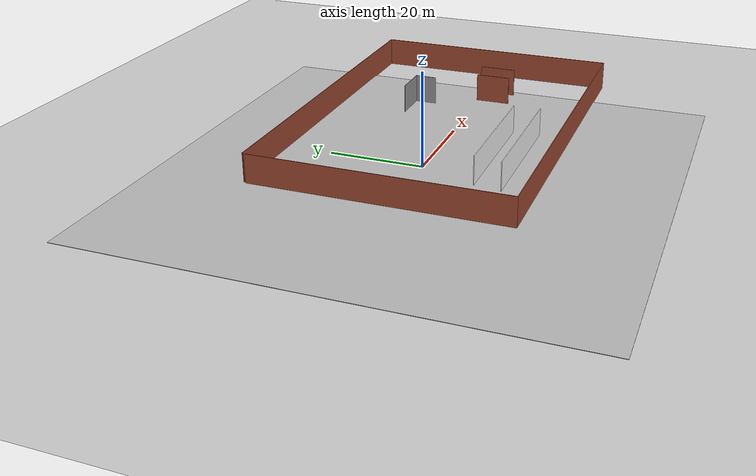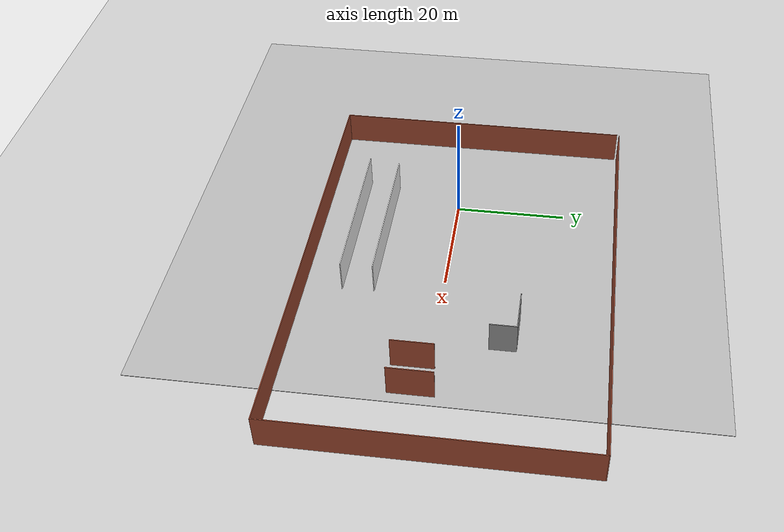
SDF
<sdf version="1.7">
 <world name="default">
  <light name="sun" type="directional">
   <pose>0 0 10 0 -0 0</pose>
   <diffuse>0.8 0.8 0.8 1</diffuse>
   <specular>0.2 0.2 0.2 1</specular>
   <attenuation>
    <range>1000</range>
    <constant>0.9</constant>
    <linear>0.01</linear>
    <quadratic>0.001</quadratic>
   </attenuation>
   <direction>-0.5 0.1 -0.9</direction>
   <spot><inner_angle>0</inner_angle><outer_angle>0</outer_angle><falloff>0</falloff></spot>
  </light>
  <model name="ground_plane">
   <static>1</static>
   <link name="link">
    <collision name="collision">
     <geometry><plane><normal>0 0 1</normal><size>100 100</size></plane></geometry>
     <surface>
      <contact><collide_bitmask>65535</collide_bitmask></contact>
      <friction><ode><mu>100</mu><mu2>50</mu2></ode></friction>
     </surface>
    </collision>
    <visual name="visual">
     <cast_shadows>0</cast_shadows>
     <geometry><plane><normal>0 0 1</normal><size>100 100</size></plane></geometry>
     <material>
      <script><uri>file://media/materials/scripts/gazebo.material</uri><name>Gazebo/Grey</name></script>
     </material>
    </visual>
   </link>
  </model>
  <gravity>0 0 -9.8</gravity>
  <magnetic_field>6e-06 2.3e-05 -4.2e-05</magnetic_field>
  <atmosphere type="adiabatic"/>
  <physics type="ode">
   <max_step_size>0.001</max_step_size>
   <real_time_factor>1</real_time_factor>
   <real_time_update_rate>1000</real_time_update_rate>
  </physics>
  <scene><ambient>0.4 0.4 0.4 1</ambient><background>0.7 0.7 0.7 1</background><shadows>1</shadows></scene>
  <spherical_coordinates>
   <surface_model>EARTH_WGS84</surface_model>
   <latitude_deg>0</latitude_deg>
   <longitude_deg>0</longitude_deg>
   <elevation>0</elevation>
   <heading_deg>0</heading_deg>
  </spherical_coordinates>
  <model name="ground_plane_0">
   <static>1</static>
   <link name="link">
    <collision name="collision">
     <geometry><plane><normal>0 0 1</normal><size>100 100</size></plane></geometry>
     <surface><friction><ode><mu>100</mu><mu2>50</mu2></ode></friction></surface>
    </collision>
    <visual name="visual">
     <cast_shadows>0</cast_shadows>
     <geometry><plane><normal>0 0 1</normal><size>100 100</size></plane></geometry>
     <material>
      <script>
       <uri>model://my_ground_plane/materials/scripts</uri>
       <uri>model://my_ground_plane/materials/textures/</uri>
       <name>MyGroundPlane/Image</name>
      </script>
     </material>
    </visual>
   </link>
   <pose>-2.09958 -0.261794 0 0 -0 0</pose>
  </model>
  <model name="jypro_simulation_wall">
   <pose>19.7486 2.51602 0 0 -0 0</pose>
   <link name="Wall_0">
    <collision name="Wall_0_Collision">
     <geometry><box><size>54.25 0.15 10</size></box></geometry>
     <pose>0 0 1.25 0 -0 0</pose>
    </collision>
    <visual name="Wall_0_Visual">
     <pose>0 0 1.25 0 -0 0</pose>
     <geometry><box><size>54.25 0.15 10</size></box></geometry>
     <material>
      <script><uri>file://media/materials/scripts/gazebo.material</uri><name>Gazebo/Bricks</name></script>
      <ambient>1 1 1 1</ambient>
     </material>
     <meta><layer>0</layer></meta>
    </visual>
    <pose>-38.8 -0.25 0 0 -0 -1.5708</pose>
   </link>
   <link name="Wall_1">
    <collision name="Wall_1_Collision">
     <geometry><box><size>77.75 0.15 10</size></box></geometry>
     <pose>0 0 1.25 0 -0 0</pose>
    </collision>
    <visual name="Wall_1_Visual">
     <pose>0 0 1.25 0 -0 0</pose>
     <geometry><box><size>77.75 0.15 10</size></box></geometry>
     <material>
      <script><uri>file://media/materials/scripts/gazebo.material</uri><name>Gazebo/Bricks</name></script>
      <ambient>1 1 1 1</ambient>
     </material>
     <meta><layer>0</layer></meta>
    </visual>
    <pose>1e-06 -27.3 0 0 -0 0</pose>
   </link>
   <link name="Wall_11">
    <collision name="Wall_11_Collision">
     <geometry><box><size>8 0.15 10</size></box></geometry>
     <pose>0 0 1.25 0 -0 0</pose>
    </collision>
    <visual name="Wall_11_Visual">
     <pose>0 0 1.25 0 -0 0</pose>
     <geometry><box><size>8 0.15 10</size></box></geometry>
     <material>
      <script><uri>file://media/materials/scripts/gazebo.material</uri><name>Gazebo/Bricks</name></script>
      <ambient>1 1 1 1</ambient>
     </material>
     <meta><layer>0</layer></meta>
    </visual>
    <pose>26.267 -4.6651 0 0 -0 1.5708</pose>
   </link>
   <link name="Wall_13">
    <collision name="Wall_13_Collision">
     <geometry><box><size>7.75 0.15 10</size></box></geometry>
     <pose>0 0 1.25 0 -0 0</pose>
    </collision>
    <visual name="Wall_13_Visual">
     <pose>0 0 1.25 0 -0 0</pose>
     <geometry><box><size>7.75 0.15 10</size></box></geometry>
     <material>
      <script><uri>file://media/materials/scripts/gazebo.material</uri><name>Gazebo/Grey</name></script>
      <ambient>1 1 1 1</ambient>
     </material>
     <meta><layer>0</layer></meta>
    </visual>
    <pose>11.1817 11.5648 0 0 -0 0</pose>
   </link>
   <link name="Wall_14">
    <collision name="Wall_14_Collision">
     <geometry><box><size>4.75 0.15 10</size></box></geometry>
     <pose>0 0 1.25 0 -0 0</pose>
    </collision>
    <visual name="Wall_14_Visual">
     <pose>0 0 1.25 0 -0 0</pose>
     <geometry><box><size>4.75 0.15 10</size></box></geometry>
     <material>
      <script><uri>file://media/materials/scripts/gazebo.material</uri><name>Gazebo/Grey</name></script>
      <ambient>1 1 1 1</ambient>
     </material>
     <meta><layer>0</layer></meta>
    </visual>
    <pose>14.9817 9.2648 0 0 -0 -1.5708</pose>
   </link>
   <link name="Wall_2">
    <collision name="Wall_2_Collision">
     <geometry><box><size>54.75 0.15 10</size></box></geometry>
     <pose>0 0 1.25 0 -0 0</pose>
    </collision>
    <visual name="Wall_2_Visual">
     <pose>0 0 1.25 0 -0 0</pose>
     <geometry><box><size>54.75 0.15 10</size></box></geometry>
     <material>
      <script><uri>file://media/materials/scripts/gazebo.material</uri><name>Gazebo/Bricks</name></script>
      <ambient>1 1 1 1</ambient>
     </material>
     <meta><layer>0</layer></meta>
    </visual>
    <pose>38.8 -0 0 0 -0 1.5708</pose>
   </link>
   <link name="Wall_3">
    <collision name="Wall_3_Collision">
     <geometry><box><size>77.5 0.15 10</size></box></geometry>
     <pose>0 0 1.25 0 -0 0</pose>
    </collision>
    <visual name="Wall_3_Visual">
     <pose>0 0 1.25 0 -0 0</pose>
     <geometry><box><size>77.5 0.15 10</size></box></geometry>
     <material>
      <script><uri>file://media/materials/scripts/gazebo.material</uri><name>Gazebo/Bricks</name></script>
      <ambient>1 1 1 1</ambient>
     </material>
     <meta><layer>0</layer></meta>
    </visual>
    <pose>0.125001 27.3 0 0 -0 3.14159</pose>
   </link>
   <link name="Wall_5">
    <collision name="Wall_5_Collision">
     <geometry><box><size>29.5 0.15 10</size></box></geometry>
     <pose>0 0 1.25 0 -0 0</pose>
    </collision>
    <visual name="Wall_5_Visual">
     <pose>0 0 1.25 0 -0 0</pose>
     <geometry><box><size>29.5 0.15 10</size></box></geometry>
     <material>
      <script>
       <uri>/home/dqwang/MPC_WBC_sim/catkin_ws/src/Jueying_description/JYPro/meshes/wall_5/materials/scripts</uri>
       <uri>/home/dqwang/MPC_WBC_sim/catkin_ws/src/Jueying_description/JYPro/meshes/wall_5/materials/textures/</uri>
       <name>wall_5/Image</name>
      </script>
      <ambient>1 1 1 1</ambient>
     </material>
     <meta><layer>0</layer></meta>
    </visual>
    <pose>-10.6355 -20.4926 0 0 -0 0</pose>
   </link>
   <link name="Wall_7">
    <collision name="Wall_7_Collision">
     <geometry><box><size>28.5 0.15 10</size></box></geometry>
     <pose>0 0 1.25 0 -0 0</pose>
    </collision>
    <visual name="Wall_7_Visual">
     <pose>0 0 1.25 0 -0 0</pose>
     <geometry><box><size>28.5 0.15 10</size></box></geometry>
     <material>
      <script>
       <uri>/home/dqwang/MPC_WBC_sim/catkin_ws/src/Jueying_description/JYPro/meshes/wall_7/materials/scripts</uri>
       <uri>/home/dqwang/MPC_WBC_sim/catkin_ws/src/Jueying_description/JYPro/meshes/wall_7/materials/textures/</uri>
       <name>wall7/Image</name>
      </script>
      <ambient>1 1 1 1</ambient>
     </material>
     <meta><layer>0</layer></meta>
    </visual>
    <pose>-10.342 -14.7794 0 0 -0 0</pose>
   </link>
   <link name="Wall_9">
    <collision name="Wall_9_Collision">
     <geometry><box><size>7.5 0.15 10</size></box></geometry>
     <pose>0 0 1.25 0 -0 0</pose>
    </collision>
    <visual name="Wall_9_Visual">
     <pose>0 0 1.25 0 -0 0</pose>
     <geometry><box><size>7.5 0.15 10</size></box></geometry>
     <material>
      <script><uri>file://media/materials/scripts/gazebo.material</uri><name>Gazebo/Bricks</name></script>
      <ambient>1 1 1 1</ambient>
     </material>
     <meta><layer>0</layer></meta>
    </visual>
    <pose>20.3951 -5.2325 0 0 -0 1.5708</pose>
   </link>
   <static>1</static>
  </model>
 </world>
</sdf>
